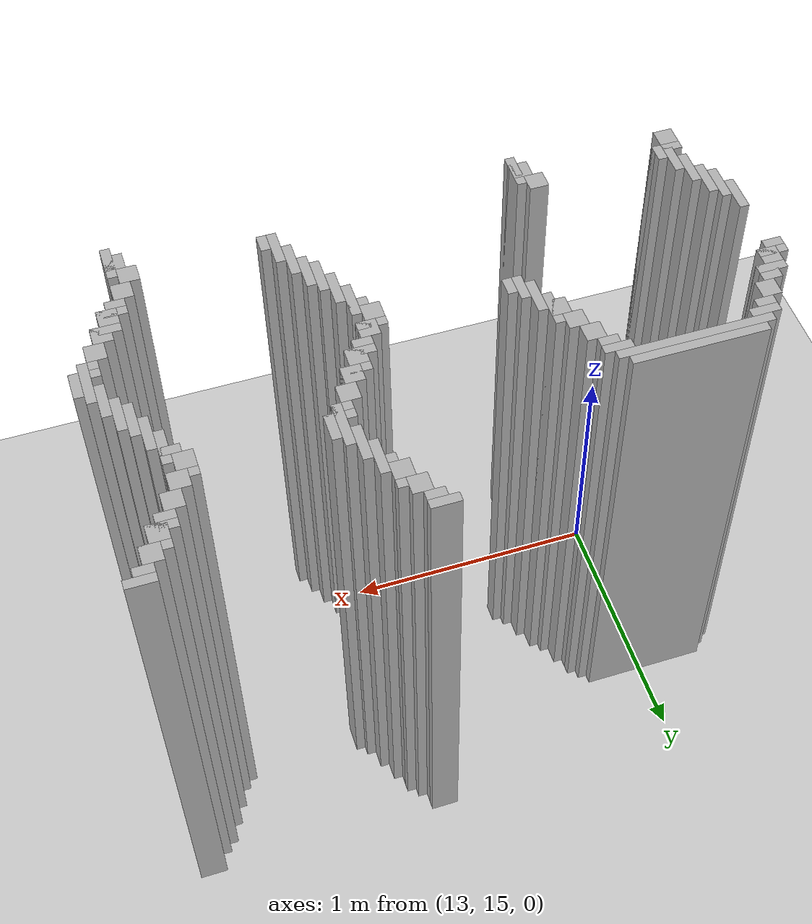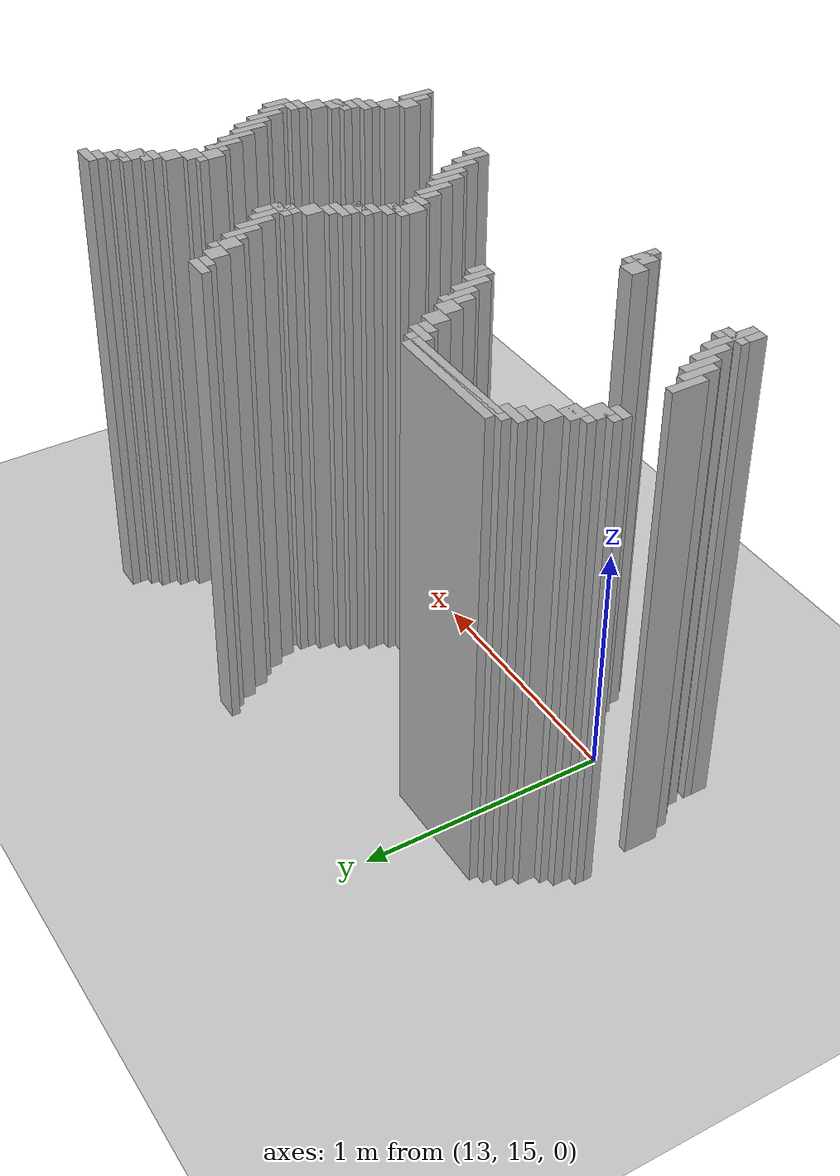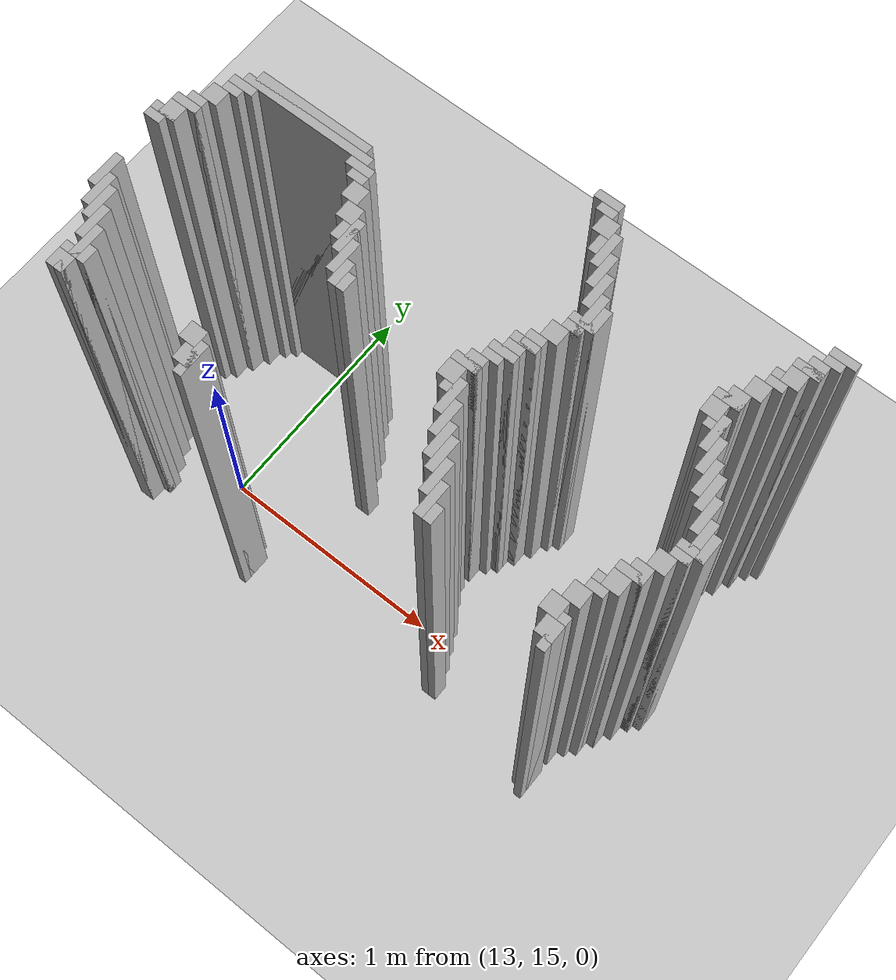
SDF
<sdf version="1.6">
 <world name="slam_world">
  <model name="ground_plane">
   <static>true</static>
   <link name="link">
    <collision name="collision">
     <geometry><plane><normal>0 0 1</normal><size>100 100</size></plane></geometry>
    </collision>
    <visual name="visual">
     <geometry><plane><normal>0 0 1</normal><size>100 100</size></plane></geometry>
     <material>
      <ambient>0.8 0.8 0.8 1</ambient>
      <diffuse>0.8 0.8 0.8 1</diffuse>
      <specular>0.8 0.8 0.8 1</specular>
     </material>
    </visual>
   </link>
  </model>
  <model name="wall_453">
   <static>true</static>
   <pose>13.973317865429234 16.061484918793504 1.0 0 0 0</pose>
   <link name="link">
    <collision name="collision">
     <geometry><box><size>0.10440835266821345 0.03480278422273782 2.0</size></box></geometry>
    </collision>
    <visual name="visual">
     <geometry><box><size>0.10440835266821345 0.03480278422273782 2.0</size></box></geometry>
     <material><ambient>0.5 0.5 0.5 1</ambient><diffuse>0.7 0.7 0.7 1</diffuse></material>
    </visual>
   </link>
  </model>
  <model name="wall_454">
   <static>true</static>
   <pose>14.912993039443155 16.061484918793504 1.0 0 0 0</pose>
   <link name="link">
    <collision name="collision">
     <geometry><box><size>0.10440835266821345 0.03480278422273782 2.0</size></box></geometry>
    </collision>
    <visual name="visual">
     <geometry><box><size>0.10440835266821345 0.03480278422273782 2.0</size></box></geometry>
     <material><ambient>0.5 0.5 0.5 1</ambient><diffuse>0.7 0.7 0.7 1</diffuse></material>
    </visual>
   </link>
  </model>
  <model name="wall_466">
   <static>true</static>
   <pose>13.990719257540603 16.026682134570766 1.0 0 0 0</pose>
   <link name="link">
    <collision name="collision">
     <geometry><box><size>0.06960556844547564 0.03480278422273782 2.0</size></box></geometry>
    </collision>
    <visual name="visual">
     <geometry><box><size>0.06960556844547564 0.03480278422273782 2.0</size></box></geometry>
     <material><ambient>0.5 0.5 0.5 1</ambient><diffuse>0.7 0.7 0.7 1</diffuse></material>
    </visual>
   </link>
  </model>
  <model name="wall_467">
   <static>true</static>
   <pose>14.895591647331786 16.026682134570766 1.0 0 0 0</pose>
   <link name="link">
    <collision name="collision">
     <geometry><box><size>0.06960556844547564 0.03480278422273782 2.0</size></box></geometry>
    </collision>
    <visual name="visual">
     <geometry><box><size>0.06960556844547564 0.03480278422273782 2.0</size></box></geometry>
     <material><ambient>0.5 0.5 0.5 1</ambient><diffuse>0.7 0.7 0.7 1</diffuse></material>
    </visual>
   </link>
  </model>
  <model name="wall_479">
   <static>true</static>
   <pose>14.02552204176334 15.974477958236658 1.0 0 0 0</pose>
   <link name="link">
    <collision name="collision">
     <geometry><box><size>0.06960556844547564 0.06960556844547564 2.0</size></box></geometry>
    </collision>
    <visual name="visual">
     <geometry><box><size>0.06960556844547564 0.06960556844547564 2.0</size></box></geometry>
     <material><ambient>0.5 0.5 0.5 1</ambient><diffuse>0.7 0.7 0.7 1</diffuse></material>
    </visual>
   </link>
  </model>
  <model name="wall_480">
   <static>true</static>
   <pose>14.860788863109049 15.974477958236658 1.0 0 0 0</pose>
   <link name="link">
    <collision name="collision">
     <geometry><box><size>0.06960556844547564 0.06960556844547564 2.0</size></box></geometry>
    </collision>
    <visual name="visual">
     <geometry><box><size>0.06960556844547564 0.06960556844547564 2.0</size></box></geometry>
     <material><ambient>0.5 0.5 0.5 1</ambient><diffuse>0.7 0.7 0.7 1</diffuse></material>
    </visual>
   </link>
  </model>
  <model name="wall_492">
   <static>true</static>
   <pose>14.077726218097448 15.904872389791183 1.0 0 0 0</pose>
   <link name="link">
    <collision name="collision">
     <geometry><box><size>0.03480278422273782 0.13921113689095127 2.0</size></box></geometry>
    </collision>
    <visual name="visual">
     <geometry><box><size>0.03480278422273782 0.13921113689095127 2.0</size></box></geometry>
     <material><ambient>0.5 0.5 0.5 1</ambient><diffuse>0.7 0.7 0.7 1</diffuse></material>
    </visual>
   </link>
  </model>
  <model name="wall_493">
   <static>true</static>
   <pose>14.84338747099768 15.95707656612529 1.0 0 0 0</pose>
   <link name="link">
    <collision name="collision">
     <geometry><box><size>0.10440835266821345 0.03480278422273782 2.0</size></box></geometry>
    </collision>
    <visual name="visual">
     <geometry><box><size>0.10440835266821345 0.03480278422273782 2.0</size></box></geometry>
     <material><ambient>0.5 0.5 0.5 1</ambient><diffuse>0.7 0.7 0.7 1</diffuse></material>
    </visual>
   </link>
  </model>
  <model name="wall_501">
   <static>true</static>
   <pose>14.06032482598608 15.904872389791183 1.0 0 0 0</pose>
   <link name="link">
    <collision name="collision">
     <geometry><box><size>0.06960556844547564 0.06960556844547564 2.0</size></box></geometry>
    </collision>
    <visual name="visual">
     <geometry><box><size>0.06960556844547564 0.06960556844547564 2.0</size></box></geometry>
     <material><ambient>0.5 0.5 0.5 1</ambient><diffuse>0.7 0.7 0.7 1</diffuse></material>
    </visual>
   </link>
  </model>
  <model name="wall_502">
   <static>true</static>
   <pose>14.825986078886311 15.904872389791183 1.0 0 0 0</pose>
   <link name="link">
    <collision name="collision">
     <geometry><box><size>0.06960556844547564 0.06960556844547564 2.0</size></box></geometry>
    </collision>
    <visual name="visual">
     <geometry><box><size>0.06960556844547564 0.06960556844547564 2.0</size></box></geometry>
     <material><ambient>0.5 0.5 0.5 1</ambient><diffuse>0.7 0.7 0.7 1</diffuse></material>
    </visual>
   </link>
  </model>
  <model name="wall_514">
   <static>true</static>
   <pose>14.112529002320185 15.835266821345707 1.0 0 0 0</pose>
   <link name="link">
    <collision name="collision">
     <geometry><box><size>0.03480278422273782 0.13921113689095127 2.0</size></box></geometry>
    </collision>
    <visual name="visual">
     <geometry><box><size>0.03480278422273782 0.13921113689095127 2.0</size></box></geometry>
     <material><ambient>0.5 0.5 0.5 1</ambient><diffuse>0.7 0.7 0.7 1</diffuse></material>
    </visual>
   </link>
  </model>
  <model name="wall_515">
   <static>true</static>
   <pose>14.80858468677494 15.887470997679813 1.0 0 0 0</pose>
   <link name="link">
    <collision name="collision">
     <geometry><box><size>0.10440835266821345 0.03480278422273782 2.0</size></box></geometry>
    </collision>
    <visual name="visual">
     <geometry><box><size>0.10440835266821345 0.03480278422273782 2.0</size></box></geometry>
     <material><ambient>0.5 0.5 0.5 1</ambient><diffuse>0.7 0.7 0.7 1</diffuse></material>
    </visual>
   </link>
  </model>
  <model name="wall_522">
   <static>true</static>
   <pose>14.791183294663572 15.852668213457076 1.0 0 0 0</pose>
   <link name="link">
    <collision name="collision">
     <geometry><box><size>0.06960556844547564 0.03480278422273782 2.0</size></box></geometry>
    </collision>
    <visual name="visual">
     <geometry><box><size>0.06960556844547564 0.03480278422273782 2.0</size></box></geometry>
     <material><ambient>0.5 0.5 0.5 1</ambient><diffuse>0.7 0.7 0.7 1</diffuse></material>
    </visual>
   </link>
  </model>
  <model name="wall_534">
   <static>true</static>
   <pose>14.147331786542923 15.765661252900232 1.0 0 0 0</pose>
   <link name="link">
    <collision name="collision">
     <geometry><box><size>0.03480278422273782 0.13921113689095127 2.0</size></box></geometry>
    </collision>
    <visual name="visual">
     <geometry><box><size>0.03480278422273782 0.13921113689095127 2.0</size></box></geometry>
     <material><ambient>0.5 0.5 0.5 1</ambient><diffuse>0.7 0.7 0.7 1</diffuse></material>
    </visual>
   </link>
  </model>
  <model name="wall_535">
   <static>true</static>
   <pose>14.756380510440835 15.80046403712297 1.0 0 0 0</pose>
   <link name="link">
    <collision name="collision">
     <geometry><box><size>0.06960556844547564 0.06960556844547564 2.0</size></box></geometry>
    </collision>
    <visual name="visual">
     <geometry><box><size>0.06960556844547564 0.06960556844547564 2.0</size></box></geometry>
     <material><ambient>0.5 0.5 0.5 1</ambient><diffuse>0.7 0.7 0.7 1</diffuse></material>
    </visual>
   </link>
  </model>
  <model name="wall_547">
   <static>true</static>
   <pose>14.18213457076566 15.678654292343387 1.0 0 0 0</pose>
   <link name="link">
    <collision name="collision">
     <geometry><box><size>0.03480278422273782 0.17401392111368907 2.0</size></box></geometry>
    </collision>
    <visual name="visual">
     <geometry><box><size>0.03480278422273782 0.17401392111368907 2.0</size></box></geometry>
     <material><ambient>0.5 0.5 0.5 1</ambient><diffuse>0.7 0.7 0.7 1</diffuse></material>
    </visual>
   </link>
  </model>
  <model name="wall_548">
   <static>true</static>
   <pose>14.721577726218097 15.730858468677493 1.0 0 0 0</pose>
   <link name="link">
    <collision name="collision">
     <geometry><box><size>0.06960556844547564 0.06960556844547564 2.0</size></box></geometry>
    </collision>
    <visual name="visual">
     <geometry><box><size>0.06960556844547564 0.06960556844547564 2.0</size></box></geometry>
     <material><ambient>0.5 0.5 0.5 1</ambient><diffuse>0.7 0.7 0.7 1</diffuse></material>
    </visual>
   </link>
  </model>
  <model name="wall_559">
   <static>true</static>
   <pose>12.981438515081207 15.696055684454755 1.0 0 0 0</pose>
   <link name="link">
    <collision name="collision">
     <geometry><box><size>0.4872389791183295 0.06960556844547564 2.0</size></box></geometry>
    </collision>
    <visual name="visual">
     <geometry><box><size>0.4872389791183295 0.06960556844547564 2.0</size></box></geometry>
     <material><ambient>0.5 0.5 0.5 1</ambient><diffuse>0.7 0.7 0.7 1</diffuse></material>
    </visual>
   </link>
  </model>
  <model name="wall_560">
   <static>true</static>
   <pose>14.2169373549884 15.678654292343387 1.0 0 0 0</pose>
   <link name="link">
    <collision name="collision">
     <geometry><box><size>0.03480278422273782 0.10440835266821345 2.0</size></box></geometry>
    </collision>
    <visual name="visual">
     <geometry><box><size>0.03480278422273782 0.10440835266821345 2.0</size></box></geometry>
     <material><ambient>0.5 0.5 0.5 1</ambient><diffuse>0.7 0.7 0.7 1</diffuse></material>
    </visual>
   </link>
  </model>
  <model name="wall_561">
   <static>true</static>
   <pose>14.704176334106728 15.713457076566124 1.0 0 0 0</pose>
   <link name="link">
    <collision name="collision">
     <geometry><box><size>0.10440835266821345 0.03480278422273782 2.0</size></box></geometry>
    </collision>
    <visual name="visual">
     <geometry><box><size>0.10440835266821345 0.03480278422273782 2.0</size></box></geometry>
     <material><ambient>0.5 0.5 0.5 1</ambient><diffuse>0.7 0.7 0.7 1</diffuse></material>
    </visual>
   </link>
  </model>
  <model name="wall_572">
   <static>true</static>
   <pose>12.981438515081207 15.678654292343387 1.0 0 0 0</pose>
   <link name="link">
    <collision name="collision">
     <geometry><box><size>0.5568445475638051 0.03480278422273782 2.0</size></box></geometry>
    </collision>
    <visual name="visual">
     <geometry><box><size>0.5568445475638051 0.03480278422273782 2.0</size></box></geometry>
     <material><ambient>0.5 0.5 0.5 1</ambient><diffuse>0.7 0.7 0.7 1</diffuse></material>
    </visual>
   </link>
  </model>
  <model name="wall_573">
   <static>true</static>
   <pose>14.68677494199536 15.661252900232018 1.0 0 0 0</pose>
   <link name="link">
    <collision name="collision">
     <geometry><box><size>0.06960556844547564 0.06960556844547564 2.0</size></box></geometry>
    </collision>
    <visual name="visual">
     <geometry><box><size>0.06960556844547564 0.06960556844547564 2.0</size></box></geometry>
     <material><ambient>0.5 0.5 0.5 1</ambient><diffuse>0.7 0.7 0.7 1</diffuse></material>
    </visual>
   </link>
  </model>
  <model name="wall_588">
   <static>true</static>
   <pose>12.720417633410673 15.64385150812065 1.0 0 0 0</pose>
   <link name="link">
    <collision name="collision">
     <geometry><box><size>0.10440835266821345 0.03480278422273782 2.0</size></box></geometry>
    </collision>
    <visual name="visual">
     <geometry><box><size>0.10440835266821345 0.03480278422273782 2.0</size></box></geometry>
     <material><ambient>0.5 0.5 0.5 1</ambient><diffuse>0.7 0.7 0.7 1</diffuse></material>
    </visual>
   </link>
  </model>
  <model name="wall_589">
   <static>true</static>
   <pose>13.24245939675174 15.64385150812065 1.0 0 0 0</pose>
   <link name="link">
    <collision name="collision">
     <geometry><box><size>0.10440835266821345 0.03480278422273782 2.0</size></box></geometry>
    </collision>
    <visual name="visual">
     <geometry><box><size>0.10440835266821345 0.03480278422273782 2.0</size></box></geometry>
     <material><ambient>0.5 0.5 0.5 1</ambient><diffuse>0.7 0.7 0.7 1</diffuse></material>
    </visual>
   </link>
  </model>
  <model name="wall_590">
   <static>true</static>
   <pose>14.18213457076566 15.64385150812065 1.0 0 0 0</pose>
   <link name="link">
    <collision name="collision">
     <geometry><box><size>0.10440835266821345 0.03480278422273782 2.0</size></box></geometry>
    </collision>
    <visual name="visual">
     <geometry><box><size>0.10440835266821345 0.03480278422273782 2.0</size></box></geometry>
     <material><ambient>0.5 0.5 0.5 1</ambient><diffuse>0.7 0.7 0.7 1</diffuse></material>
    </visual>
   </link>
  </model>
  <model name="wall_591">
   <static>true</static>
   <pose>14.738979118329466 15.591647331786543 1.0 0 0 0</pose>
   <link name="link">
    <collision name="collision">
     <geometry><box><size>0.03480278422273782 0.13921113689095127 2.0</size></box></geometry>
    </collision>
    <visual name="visual">
     <geometry><box><size>0.03480278422273782 0.13921113689095127 2.0</size></box></geometry>
     <material><ambient>0.5 0.5 0.5 1</ambient><diffuse>0.7 0.7 0.7 1</diffuse></material>
    </visual>
   </link>
  </model>
  <model name="wall_604">
   <static>true</static>
   <pose>12.703016241299304 15.609048723897912 1.0 0 0 0</pose>
   <link name="link">
    <collision name="collision">
     <geometry><box><size>0.06960556844547564 0.03480278422273782 2.0</size></box></geometry>
    </collision>
    <visual name="visual">
     <geometry><box><size>0.06960556844547564 0.03480278422273782 2.0</size></box></geometry>
     <material><ambient>0.5 0.5 0.5 1</ambient><diffuse>0.7 0.7 0.7 1</diffuse></material>
    </visual>
   </link>
  </model>
  <model name="wall_605">
   <static>true</static>
   <pose>13.259860788863108 15.609048723897912 1.0 0 0 0</pose>
   <link name="link">
    <collision name="collision">
     <geometry><box><size>0.06960556844547564 0.03480278422273782 2.0</size></box></geometry>
    </collision>
    <visual name="visual">
     <geometry><box><size>0.06960556844547564 0.03480278422273782 2.0</size></box></geometry>
     <material><ambient>0.5 0.5 0.5 1</ambient><diffuse>0.7 0.7 0.7 1</diffuse></material>
    </visual>
   </link>
  </model>
  <model name="wall_606">
   <static>true</static>
   <pose>14.164733178654291 15.609048723897912 1.0 0 0 0</pose>
   <link name="link">
    <collision name="collision">
     <geometry><box><size>0.06960556844547564 0.03480278422273782 2.0</size></box></geometry>
    </collision>
    <visual name="visual">
     <geometry><box><size>0.06960556844547564 0.03480278422273782 2.0</size></box></geometry>
     <material><ambient>0.5 0.5 0.5 1</ambient><diffuse>0.7 0.7 0.7 1</diffuse></material>
    </visual>
   </link>
  </model>
  <model name="wall_607">
   <static>true</static>
   <pose>14.721577726218097 15.609048723897912 1.0 0 0 0</pose>
   <link name="link">
    <collision name="collision">
     <geometry><box><size>0.06960556844547564 0.03480278422273782 2.0</size></box></geometry>
    </collision>
    <visual name="visual">
     <geometry><box><size>0.06960556844547564 0.03480278422273782 2.0</size></box></geometry>
     <material><ambient>0.5 0.5 0.5 1</ambient><diffuse>0.7 0.7 0.7 1</diffuse></material>
    </visual>
   </link>
  </model>
  <model name="wall_620">
   <static>true</static>
   <pose>12.668213457076565 15.556844547563804 1.0 0 0 0</pose>
   <link name="link">
    <collision name="collision">
     <geometry><box><size>0.06960556844547564 0.06960556844547564 2.0</size></box></geometry>
    </collision>
    <visual name="visual">
     <geometry><box><size>0.06960556844547564 0.06960556844547564 2.0</size></box></geometry>
     <material><ambient>0.5 0.5 0.5 1</ambient><diffuse>0.7 0.7 0.7 1</diffuse></material>
    </visual>
   </link>
  </model>
  <model name="wall_621">
   <static>true</static>
   <pose>13.294663573085847 15.556844547563804 1.0 0 0 0</pose>
   <link name="link">
    <collision name="collision">
     <geometry><box><size>0.06960556844547564 0.06960556844547564 2.0</size></box></geometry>
    </collision>
    <visual name="visual">
     <geometry><box><size>0.06960556844547564 0.06960556844547564 2.0</size></box></geometry>
     <material><ambient>0.5 0.5 0.5 1</ambient><diffuse>0.7 0.7 0.7 1</diffuse></material>
    </visual>
   </link>
  </model>
  <model name="wall_622">
   <static>true</static>
   <pose>14.129930394431554 15.556844547563804 1.0 0 0 0</pose>
   <link name="link">
    <collision name="collision">
     <geometry><box><size>0.06960556844547564 0.06960556844547564 2.0</size></box></geometry>
    </collision>
    <visual name="visual">
     <geometry><box><size>0.06960556844547564 0.06960556844547564 2.0</size></box></geometry>
     <material><ambient>0.5 0.5 0.5 1</ambient><diffuse>0.7 0.7 0.7 1</diffuse></material>
    </visual>
   </link>
  </model>
  <model name="wall_623">
   <static>true</static>
   <pose>14.773781902552203 15.522041763341067 1.0 0 0 0</pose>
   <link name="link">
    <collision name="collision">
     <geometry><box><size>0.03480278422273782 0.13921113689095127 2.0</size></box></geometry>
    </collision>
    <visual name="visual">
     <geometry><box><size>0.03480278422273782 0.13921113689095127 2.0</size></box></geometry>
     <material><ambient>0.5 0.5 0.5 1</ambient><diffuse>0.7 0.7 0.7 1</diffuse></material>
    </visual>
   </link>
  </model>
  <model name="wall_636">
   <static>true</static>
   <pose>12.633410672853827 15.48723897911833 1.0 0 0 0</pose>
   <link name="link">
    <collision name="collision">
     <geometry><box><size>0.06960556844547564 0.06960556844547564 2.0</size></box></geometry>
    </collision>
    <visual name="visual">
     <geometry><box><size>0.06960556844547564 0.06960556844547564 2.0</size></box></geometry>
     <material><ambient>0.5 0.5 0.5 1</ambient><diffuse>0.7 0.7 0.7 1</diffuse></material>
    </visual>
   </link>
  </model>
  <model name="wall_637">
   <static>true</static>
   <pose>13.329466357308585 15.48723897911833 1.0 0 0 0</pose>
   <link name="link">
    <collision name="collision">
     <geometry><box><size>0.06960556844547564 0.06960556844547564 2.0</size></box></geometry>
    </collision>
    <visual name="visual">
     <geometry><box><size>0.06960556844547564 0.06960556844547564 2.0</size></box></geometry>
     <material><ambient>0.5 0.5 0.5 1</ambient><diffuse>0.7 0.7 0.7 1</diffuse></material>
    </visual>
   </link>
  </model>
  <model name="wall_638">
   <static>true</static>
   <pose>14.095127610208817 15.48723897911833 1.0 0 0 0</pose>
   <link name="link">
    <collision name="collision">
     <geometry><box><size>0.06960556844547564 0.06960556844547564 2.0</size></box></geometry>
    </collision>
    <visual name="visual">
     <geometry><box><size>0.06960556844547564 0.06960556844547564 2.0</size></box></geometry>
     <material><ambient>0.5 0.5 0.5 1</ambient><diffuse>0.7 0.7 0.7 1</diffuse></material>
    </visual>
   </link>
  </model>
  <model name="wall_639">
   <static>true</static>
   <pose>14.80858468677494 15.452436194895592 1.0 0 0 0</pose>
   <link name="link">
    <collision name="collision">
     <geometry><box><size>0.03480278422273782 0.13921113689095127 2.0</size></box></geometry>
    </collision>
    <visual name="visual">
     <geometry><box><size>0.03480278422273782 0.13921113689095127 2.0</size></box></geometry>
     <material><ambient>0.5 0.5 0.5 1</ambient><diffuse>0.7 0.7 0.7 1</diffuse></material>
    </visual>
   </link>
  </model>
  <model name="wall_652">
   <static>true</static>
   <pose>12.616009280742459 15.46983758700696 1.0 0 0 0</pose>
   <link name="link">
    <collision name="collision">
     <geometry><box><size>0.10440835266821345 0.03480278422273782 2.0</size></box></geometry>
    </collision>
    <visual name="visual">
     <geometry><box><size>0.10440835266821345 0.03480278422273782 2.0</size></box></geometry>
     <material><ambient>0.5 0.5 0.5 1</ambient><diffuse>0.7 0.7 0.7 1</diffuse></material>
    </visual>
   </link>
  </model>
  <model name="wall_653">
   <static>true</static>
   <pose>13.38167053364269 15.417633410672853 1.0 0 0 0</pose>
   <link name="link">
    <collision name="collision">
     <geometry><box><size>0.03480278422273782 0.13921113689095127 2.0</size></box></geometry>
    </collision>
    <visual name="visual">
     <geometry><box><size>0.03480278422273782 0.13921113689095127 2.0</size></box></geometry>
     <material><ambient>0.5 0.5 0.5 1</ambient><diffuse>0.7 0.7 0.7 1</diffuse></material>
    </visual>
   </link>
  </model>
  <model name="wall_654">
   <static>true</static>
   <pose>14.077726218097448 15.46983758700696 1.0 0 0 0</pose>
   <link name="link">
    <collision name="collision">
     <geometry><box><size>0.10440835266821345 0.03480278422273782 2.0</size></box></geometry>
    </collision>
    <visual name="visual">
     <geometry><box><size>0.10440835266821345 0.03480278422273782 2.0</size></box></geometry>
     <material><ambient>0.5 0.5 0.5 1</ambient><diffuse>0.7 0.7 0.7 1</diffuse></material>
    </visual>
   </link>
  </model>
  <model name="wall_655">
   <static>true</static>
   <pose>14.84338747099768 15.417633410672853 1.0 0 0 0</pose>
   <link name="link">
    <collision name="collision">
     <geometry><box><size>0.03480278422273782 0.13921113689095127 2.0</size></box></geometry>
    </collision>
    <visual name="visual">
     <geometry><box><size>0.03480278422273782 0.13921113689095127 2.0</size></box></geometry>
     <material><ambient>0.5 0.5 0.5 1</ambient><diffuse>0.7 0.7 0.7 1</diffuse></material>
    </visual>
   </link>
  </model>
  <model name="wall_663">
   <static>true</static>
   <pose>12.59860788863109 15.417633410672853 1.0 0 0 0</pose>
   <link name="link">
    <collision name="collision">
     <geometry><box><size>0.06960556844547564 0.06960556844547564 2.0</size></box></geometry>
    </collision>
    <visual name="visual">
     <geometry><box><size>0.06960556844547564 0.06960556844547564 2.0</size></box></geometry>
     <material><ambient>0.5 0.5 0.5 1</ambient><diffuse>0.7 0.7 0.7 1</diffuse></material>
    </visual>
   </link>
  </model>
  <model name="wall_664">
   <static>true</static>
   <pose>13.364269141531322 15.417633410672853 1.0 0 0 0</pose>
   <link name="link">
    <collision name="collision">
     <geometry><box><size>0.06960556844547564 0.06960556844547564 2.0</size></box></geometry>
    </collision>
    <visual name="visual">
     <geometry><box><size>0.06960556844547564 0.06960556844547564 2.0</size></box></geometry>
     <material><ambient>0.5 0.5 0.5 1</ambient><diffuse>0.7 0.7 0.7 1</diffuse></material>
    </visual>
   </link>
  </model>
  <model name="wall_665">
   <static>true</static>
   <pose>14.06032482598608 15.417633410672853 1.0 0 0 0</pose>
   <link name="link">
    <collision name="collision">
     <geometry><box><size>0.06960556844547564 0.06960556844547564 2.0</size></box></geometry>
    </collision>
    <visual name="visual">
     <geometry><box><size>0.06960556844547564 0.06960556844547564 2.0</size></box></geometry>
     <material><ambient>0.5 0.5 0.5 1</ambient><diffuse>0.7 0.7 0.7 1</diffuse></material>
    </visual>
   </link>
  </model>
  <model name="wall_678">
   <static>true</static>
   <pose>12.581206496519721 15.400232018561484 1.0 0 0 0</pose>
   <link name="link">
    <collision name="collision">
     <geometry><box><size>0.10440835266821345 0.03480278422273782 2.0</size></box></geometry>
    </collision>
    <visual name="visual">
     <geometry><box><size>0.10440835266821345 0.03480278422273782 2.0</size></box></geometry>
     <material><ambient>0.5 0.5 0.5 1</ambient><diffuse>0.7 0.7 0.7 1</diffuse></material>
    </visual>
   </link>
  </model>
  <model name="wall_679">
   <static>true</static>
   <pose>13.416473317865428 15.348027842227378 1.0 0 0 0</pose>
   <link name="link">
    <collision name="collision">
     <geometry><box><size>0.03480278422273782 0.13921113689095127 2.0</size></box></geometry>
    </collision>
    <visual name="visual">
     <geometry><box><size>0.03480278422273782 0.13921113689095127 2.0</size></box></geometry>
     <material><ambient>0.5 0.5 0.5 1</ambient><diffuse>0.7 0.7 0.7 1</diffuse></material>
    </visual>
   </link>
  </model>
  <model name="wall_680">
   <static>true</static>
   <pose>14.042923433874709 15.400232018561484 1.0 0 0 0</pose>
   <link name="link">
    <collision name="collision">
     <geometry><box><size>0.10440835266821345 0.03480278422273782 2.0</size></box></geometry>
    </collision>
    <visual name="visual">
     <geometry><box><size>0.10440835266821345 0.03480278422273782 2.0</size></box></geometry>
     <material><ambient>0.5 0.5 0.5 1</ambient><diffuse>0.7 0.7 0.7 1</diffuse></material>
    </visual>
   </link>
  </model>
  <model name="wall_681">
   <static>true</static>
   <pose>14.878190255220417 15.348027842227378 1.0 0 0 0</pose>
   <link name="link">
    <collision name="collision">
     <geometry><box><size>0.03480278422273782 0.13921113689095127 2.0</size></box></geometry>
    </collision>
    <visual name="visual">
     <geometry><box><size>0.03480278422273782 0.13921113689095127 2.0</size></box></geometry>
     <material><ambient>0.5 0.5 0.5 1</ambient><diffuse>0.7 0.7 0.7 1</diffuse></material>
    </visual>
   </link>
  </model>
  <model name="wall_686">
   <static>true</static>
   <pose>12.563805104408353 15.365429234338746 1.0 0 0 0</pose>
   <link name="link">
    <collision name="collision">
     <geometry><box><size>0.06960556844547564 0.03480278422273782 2.0</size></box></geometry>
    </collision>
    <visual name="visual">
     <geometry><box><size>0.06960556844547564 0.03480278422273782 2.0</size></box></geometry>
     <material><ambient>0.5 0.5 0.5 1</ambient><diffuse>0.7 0.7 0.7 1</diffuse></material>
    </visual>
   </link>
  </model>
  <model name="wall_687">
   <static>true</static>
   <pose>14.02552204176334 15.365429234338746 1.0 0 0 0</pose>
   <link name="link">
    <collision name="collision">
     <geometry><box><size>0.06960556844547564 0.03480278422273782 2.0</size></box></geometry>
    </collision>
    <visual name="visual">
     <geometry><box><size>0.06960556844547564 0.03480278422273782 2.0</size></box></geometry>
     <material><ambient>0.5 0.5 0.5 1</ambient><diffuse>0.7 0.7 0.7 1</diffuse></material>
    </visual>
   </link>
  </model>
  <model name="wall_701">
   <static>true</static>
   <pose>13.451276102088167 15.295823665893272 1.0 0 0 0</pose>
   <link name="link">
    <collision name="collision">
     <geometry><box><size>0.03480278422273782 0.10440835266821345 2.0</size></box></geometry>
    </collision>
    <visual name="visual">
     <geometry><box><size>0.03480278422273782 0.10440835266821345 2.0</size></box></geometry>
     <material><ambient>0.5 0.5 0.5 1</ambient><diffuse>0.7 0.7 0.7 1</diffuse></material>
    </visual>
   </link>
  </model>
  <model name="wall_702">
   <static>true</static>
   <pose>13.990719257540603 15.31322505800464 1.0 0 0 0</pose>
   <link name="link">
    <collision name="collision">
     <geometry><box><size>0.06960556844547564 0.06960556844547564 2.0</size></box></geometry>
    </collision>
    <visual name="visual">
     <geometry><box><size>0.06960556844547564 0.06960556844547564 2.0</size></box></geometry>
     <material><ambient>0.5 0.5 0.5 1</ambient><diffuse>0.7 0.7 0.7 1</diffuse></material>
    </visual>
   </link>
  </model>
  <model name="wall_703">
   <static>true</static>
   <pose>14.912993039443155 15.261020881670532 1.0 0 0 0</pose>
   <link name="link">
    <collision name="collision">
     <geometry><box><size>0.03480278422273782 0.17401392111368907 2.0</size></box></geometry>
    </collision>
    <visual name="visual">
     <geometry><box><size>0.03480278422273782 0.17401392111368907 2.0</size></box></geometry>
     <material><ambient>0.5 0.5 0.5 1</ambient><diffuse>0.7 0.7 0.7 1</diffuse></material>
    </visual>
   </link>
  </model>
  <model name="wall_717">
   <static>true</static>
   <pose>13.486078886310905 15.278422273781901 1.0 0 0 0</pose>
   <link name="link">
    <collision name="collision">
     <geometry><box><size>0.03480278422273782 0.06960556844547564 2.0</size></box></geometry>
    </collision>
    <visual name="visual">
     <geometry><box><size>0.03480278422273782 0.06960556844547564 2.0</size></box></geometry>
     <material><ambient>0.5 0.5 0.5 1</ambient><diffuse>0.7 0.7 0.7 1</diffuse></material>
    </visual>
   </link>
  </model>
  <model name="wall_718">
   <static>true</static>
   <pose>13.973317865429234 15.295823665893272 1.0 0 0 0</pose>
   <link name="link">
    <collision name="collision">
     <geometry><box><size>0.10440835266821345 0.03480278422273782 2.0</size></box></geometry>
    </collision>
    <visual name="visual">
     <geometry><box><size>0.10440835266821345 0.03480278422273782 2.0</size></box></geometry>
     <material><ambient>0.5 0.5 0.5 1</ambient><diffuse>0.7 0.7 0.7 1</diffuse></material>
    </visual>
   </link>
  </model>
  <model name="wall_719">
   <static>true</static>
   <pose>14.947795823665892 15.261020881670532 1.0 0 0 0</pose>
   <link name="link">
    <collision name="collision">
     <geometry><box><size>0.03480278422273782 0.10440835266821345 2.0</size></box></geometry>
    </collision>
    <visual name="visual">
     <geometry><box><size>0.03480278422273782 0.10440835266821345 2.0</size></box></geometry>
     <material><ambient>0.5 0.5 0.5 1</ambient><diffuse>0.7 0.7 0.7 1</diffuse></material>
    </visual>
   </link>
  </model>
  <model name="wall_729">
   <static>true</static>
   <pose>13.955916473317865 15.243619489559164 1.0 0 0 0</pose>
   <link name="link">
    <collision name="collision">
     <geometry><box><size>0.06960556844547564 0.06960556844547564 2.0</size></box></geometry>
    </collision>
    <visual name="visual">
     <geometry><box><size>0.06960556844547564 0.06960556844547564 2.0</size></box></geometry>
     <material><ambient>0.5 0.5 0.5 1</ambient><diffuse>0.7 0.7 0.7 1</diffuse></material>
    </visual>
   </link>
  </model>
  <model name="wall_744">
   <static>true</static>
   <pose>14.008120649651971 15.174013921113689 1.0 0 0 0</pose>
   <link name="link">
    <collision name="collision">
     <geometry><box><size>0.03480278422273782 0.13921113689095127 2.0</size></box></geometry>
    </collision>
    <visual name="visual">
     <geometry><box><size>0.03480278422273782 0.13921113689095127 2.0</size></box></geometry>
     <material><ambient>0.5 0.5 0.5 1</ambient><diffuse>0.7 0.7 0.7 1</diffuse></material>
    </visual>
   </link>
  </model>
  <model name="wall_745">
   <static>true</static>
   <pose>14.912993039443155 15.226218097447795 1.0 0 0 0</pose>
   <link name="link">
    <collision name="collision">
     <geometry><box><size>0.10440835266821345 0.03480278422273782 2.0</size></box></geometry>
    </collision>
    <visual name="visual">
     <geometry><box><size>0.10440835266821345 0.03480278422273782 2.0</size></box></geometry>
     <material><ambient>0.5 0.5 0.5 1</ambient><diffuse>0.7 0.7 0.7 1</diffuse></material>
    </visual>
   </link>
  </model>
  <model name="wall_761">
   <static>true</static>
   <pose>13.990719257540603 15.191415313225058 1.0 0 0 0</pose>
   <link name="link">
    <collision name="collision">
     <geometry><box><size>0.06960556844547564 0.03480278422273782 2.0</size></box></geometry>
    </collision>
    <visual name="visual">
     <geometry><box><size>0.06960556844547564 0.03480278422273782 2.0</size></box></geometry>
     <material><ambient>0.5 0.5 0.5 1</ambient><diffuse>0.7 0.7 0.7 1</diffuse></material>
    </visual>
   </link>
  </model>
  <model name="wall_762">
   <static>true</static>
   <pose>14.895591647331786 15.191415313225058 1.0 0 0 0</pose>
   <link name="link">
    <collision name="collision">
     <geometry><box><size>0.06960556844547564 0.03480278422273782 2.0</size></box></geometry>
    </collision>
    <visual name="visual">
     <geometry><box><size>0.06960556844547564 0.03480278422273782 2.0</size></box></geometry>
     <material><ambient>0.5 0.5 0.5 1</ambient><diffuse>0.7 0.7 0.7 1</diffuse></material>
    </visual>
   </link>
  </model>
  <model name="wall_777">
   <static>true</static>
   <pose>12.581206496519721 15.104408352668212 1.0 0 0 0</pose>
   <link name="link">
    <collision name="collision">
     <geometry><box><size>0.03480278422273782 0.13921113689095127 2.0</size></box></geometry>
    </collision>
    <visual name="visual">
     <geometry><box><size>0.03480278422273782 0.13921113689095127 2.0</size></box></geometry>
     <material><ambient>0.5 0.5 0.5 1</ambient><diffuse>0.7 0.7 0.7 1</diffuse></material>
    </visual>
   </link>
  </model>
  <model name="wall_778">
   <static>true</static>
   <pose>14.042923433874709 15.104408352668212 1.0 0 0 0</pose>
   <link name="link">
    <collision name="collision">
     <geometry><box><size>0.03480278422273782 0.13921113689095127 2.0</size></box></geometry>
    </collision>
    <visual name="visual">
     <geometry><box><size>0.03480278422273782 0.13921113689095127 2.0</size></box></geometry>
     <material><ambient>0.5 0.5 0.5 1</ambient><diffuse>0.7 0.7 0.7 1</diffuse></material>
    </visual>
   </link>
  </model>
  <model name="wall_779">
   <static>true</static>
   <pose>14.860788863109049 15.139211136890951 1.0 0 0 0</pose>
   <link name="link">
    <collision name="collision">
     <geometry><box><size>0.06960556844547564 0.06960556844547564 2.0</size></box></geometry>
    </collision>
    <visual name="visual">
     <geometry><box><size>0.06960556844547564 0.06960556844547564 2.0</size></box></geometry>
     <material><ambient>0.5 0.5 0.5 1</ambient><diffuse>0.7 0.7 0.7 1</diffuse></material>
    </visual>
   </link>
  </model>
  <model name="wall_794">
   <static>true</static>
   <pose>12.616009280742459 15.034802784222737 1.0 0 0 0</pose>
   <link name="link">
    <collision name="collision">
     <geometry><box><size>0.03480278422273782 0.13921113689095127 2.0</size></box></geometry>
    </collision>
    <visual name="visual">
     <geometry><box><size>0.03480278422273782 0.13921113689095127 2.0</size></box></geometry>
     <material><ambient>0.5 0.5 0.5 1</ambient><diffuse>0.7 0.7 0.7 1</diffuse></material>
    </visual>
   </link>
  </model>
  <model name="wall_795">
   <static>true</static>
   <pose>14.077726218097448 15.034802784222737 1.0 0 0 0</pose>
   <link name="link">
    <collision name="collision">
     <geometry><box><size>0.03480278422273782 0.13921113689095127 2.0</size></box></geometry>
    </collision>
    <visual name="visual">
     <geometry><box><size>0.03480278422273782 0.13921113689095127 2.0</size></box></geometry>
     <material><ambient>0.5 0.5 0.5 1</ambient><diffuse>0.7 0.7 0.7 1</diffuse></material>
    </visual>
   </link>
  </model>
  <model name="wall_796">
   <static>true</static>
   <pose>14.825986078886311 15.069605568445475 1.0 0 0 0</pose>
   <link name="link">
    <collision name="collision">
     <geometry><box><size>0.06960556844547564 0.06960556844547564 2.0</size></box></geometry>
    </collision>
    <visual name="visual">
     <geometry><box><size>0.06960556844547564 0.06960556844547564 2.0</size></box></geometry>
     <material><ambient>0.5 0.5 0.5 1</ambient><diffuse>0.7 0.7 0.7 1</diffuse></material>
    </visual>
   </link>
  </model>
  <model name="wall_811">
   <static>true</static>
   <pose>12.650812064965196 15.0 1.0 0 0 0</pose>
   <link name="link">
    <collision name="collision">
     <geometry><box><size>0.03480278422273782 0.13921113689095127 2.0</size></box></geometry>
    </collision>
    <visual name="visual">
     <geometry><box><size>0.03480278422273782 0.13921113689095127 2.0</size></box></geometry>
     <material><ambient>0.5 0.5 0.5 1</ambient><diffuse>0.7 0.7 0.7 1</diffuse></material>
    </visual>
   </link>
  </model>
  <model name="wall_812">
   <static>true</static>
   <pose>14.112529002320185 15.0 1.0 0 0 0</pose>
   <link name="link">
    <collision name="collision">
     <geometry><box><size>0.03480278422273782 0.13921113689095127 2.0</size></box></geometry>
    </collision>
    <visual name="visual">
     <geometry><box><size>0.03480278422273782 0.13921113689095127 2.0</size></box></geometry>
     <material><ambient>0.5 0.5 0.5 1</ambient><diffuse>0.7 0.7 0.7 1</diffuse></material>
    </visual>
   </link>
  </model>
  <model name="wall_813">
   <static>true</static>
   <pose>14.80858468677494 15.052204176334106 1.0 0 0 0</pose>
   <link name="link">
    <collision name="collision">
     <geometry><box><size>0.10440835266821345 0.03480278422273782 2.0</size></box></geometry>
    </collision>
    <visual name="visual">
     <geometry><box><size>0.10440835266821345 0.03480278422273782 2.0</size></box></geometry>
     <material><ambient>0.5 0.5 0.5 1</ambient><diffuse>0.7 0.7 0.7 1</diffuse></material>
    </visual>
   </link>
  </model>
  <model name="wall_823">
   <static>true</static>
   <pose>14.791183294663572 15.0 1.0 0 0 0</pose>
   <link name="link">
    <collision name="collision">
     <geometry><box><size>0.06960556844547564 0.06960556844547564 2.0</size></box></geometry>
    </collision>
    <visual name="visual">
     <geometry><box><size>0.06960556844547564 0.06960556844547564 2.0</size></box></geometry>
     <material><ambient>0.5 0.5 0.5 1</ambient><diffuse>0.7 0.7 0.7 1</diffuse></material>
    </visual>
   </link>
  </model>
  <model name="wall_838">
   <static>true</static>
   <pose>12.685614849187935 14.930394431554523 1.0 0 0 0</pose>
   <link name="link">
    <collision name="collision">
     <geometry><box><size>0.03480278422273782 0.13921113689095127 2.0</size></box></geometry>
    </collision>
    <visual name="visual">
     <geometry><box><size>0.03480278422273782 0.13921113689095127 2.0</size></box></geometry>
     <material><ambient>0.5 0.5 0.5 1</ambient><diffuse>0.7 0.7 0.7 1</diffuse></material>
    </visual>
   </link>
  </model>
  <model name="wall_839">
   <static>true</static>
   <pose>14.147331786542923 14.930394431554523 1.0 0 0 0</pose>
   <link name="link">
    <collision name="collision">
     <geometry><box><size>0.03480278422273782 0.13921113689095127 2.0</size></box></geometry>
    </collision>
    <visual name="visual">
     <geometry><box><size>0.03480278422273782 0.13921113689095127 2.0</size></box></geometry>
     <material><ambient>0.5 0.5 0.5 1</ambient><diffuse>0.7 0.7 0.7 1</diffuse></material>
    </visual>
   </link>
  </model>
  <model name="wall_840">
   <static>true</static>
   <pose>14.773781902552203 14.982598607888631 1.0 0 0 0</pose>
   <link name="link">
    <collision name="collision">
     <geometry><box><size>0.10440835266821345 0.03480278422273782 2.0</size></box></geometry>
    </collision>
    <visual name="visual">
     <geometry><box><size>0.10440835266821345 0.03480278422273782 2.0</size></box></geometry>
     <material><ambient>0.5 0.5 0.5 1</ambient><diffuse>0.7 0.7 0.7 1</diffuse></material>
    </visual>
   </link>
  </model>
  <model name="wall_849">
   <static>true</static>
   <pose>14.756380510440835 14.947795823665892 1.0 0 0 0</pose>
   <link name="link">
    <collision name="collision">
     <geometry><box><size>0.06960556844547564 0.03480278422273782 2.0</size></box></geometry>
    </collision>
    <visual name="visual">
     <geometry><box><size>0.06960556844547564 0.03480278422273782 2.0</size></box></geometry>
     <material><ambient>0.5 0.5 0.5 1</ambient><diffuse>0.7 0.7 0.7 1</diffuse></material>
    </visual>
   </link>
  </model>
  <model name="wall_864">
   <static>true</static>
   <pose>12.720417633410673 14.825986078886311 1.0 0 0 0</pose>
   <link name="link">
    <collision name="collision">
     <geometry><box><size>0.03480278422273782 0.2088167053364269 2.0</size></box></geometry>
    </collision>
    <visual name="visual">
     <geometry><box><size>0.03480278422273782 0.2088167053364269 2.0</size></box></geometry>
     <material><ambient>0.5 0.5 0.5 1</ambient><diffuse>0.7 0.7 0.7 1</diffuse></material>
    </visual>
   </link>
  </model>
  <model name="wall_865">
   <static>true</static>
   <pose>14.18213457076566 14.860788863109049 1.0 0 0 0</pose>
   <link name="link">
    <collision name="collision">
     <geometry><box><size>0.03480278422273782 0.13921113689095127 2.0</size></box></geometry>
    </collision>
    <visual name="visual">
     <geometry><box><size>0.03480278422273782 0.13921113689095127 2.0</size></box></geometry>
     <material><ambient>0.5 0.5 0.5 1</ambient><diffuse>0.7 0.7 0.7 1</diffuse></material>
    </visual>
   </link>
  </model>
  <model name="wall_866">
   <static>true</static>
   <pose>14.721577726218097 14.895591647331786 1.0 0 0 0</pose>
   <link name="link">
    <collision name="collision">
     <geometry><box><size>0.06960556844547564 0.06960556844547564 2.0</size></box></geometry>
    </collision>
    <visual name="visual">
     <geometry><box><size>0.06960556844547564 0.06960556844547564 2.0</size></box></geometry>
     <material><ambient>0.5 0.5 0.5 1</ambient><diffuse>0.7 0.7 0.7 1</diffuse></material>
    </visual>
   </link>
  </model>
  <model name="wall_886">
   <static>true</static>
   <pose>12.75522041763341 14.825986078886311 1.0 0 0 0</pose>
   <link name="link">
    <collision name="collision">
     <geometry><box><size>0.03480278422273782 0.06960556844547564 2.0</size></box></geometry>
    </collision>
    <visual name="visual">
     <geometry><box><size>0.03480278422273782 0.06960556844547564 2.0</size></box></geometry>
     <material><ambient>0.5 0.5 0.5 1</ambient><diffuse>0.7 0.7 0.7 1</diffuse></material>
    </visual>
   </link>
  </model>
  <model name="wall_887">
   <static>true</static>
   <pose>13.22505800464037 14.825986078886311 1.0 0 0 0</pose>
   <link name="link">
    <collision name="collision">
     <geometry><box><size>0.06960556844547564 0.06960556844547564 2.0</size></box></geometry>
    </collision>
    <visual name="visual">
     <geometry><box><size>0.06960556844547564 0.06960556844547564 2.0</size></box></geometry>
     <material><ambient>0.5 0.5 0.5 1</ambient><diffuse>0.7 0.7 0.7 1</diffuse></material>
    </visual>
   </link>
  </model>
  <model name="wall_888">
   <static>true</static>
   <pose>14.2169373549884 14.825986078886311 1.0 0 0 0</pose>
   <link name="link">
    <collision name="collision">
     <geometry><box><size>0.03480278422273782 0.06960556844547564 2.0</size></box></geometry>
    </collision>
    <visual name="visual">
     <geometry><box><size>0.03480278422273782 0.06960556844547564 2.0</size></box></geometry>
     <material><ambient>0.5 0.5 0.5 1</ambient><diffuse>0.7 0.7 0.7 1</diffuse></material>
    </visual>
   </link>
  </model>
  <model name="wall_889">
   <static>true</static>
   <pose>14.68677494199536 14.825986078886311 1.0 0 0 0</pose>
   <link name="link">
    <collision name="collision">
     <geometry><box><size>0.06960556844547564 0.06960556844547564 2.0</size></box></geometry>
    </collision>
    <visual name="visual">
     <geometry><box><size>0.06960556844547564 0.06960556844547564 2.0</size></box></geometry>
     <material><ambient>0.5 0.5 0.5 1</ambient><diffuse>0.7 0.7 0.7 1</diffuse></material>
    </visual>
   </link>
  </model>
  <model name="wall_900">
   <static>true</static>
   <pose>12.720417633410673 14.80858468677494 1.0 0 0 0</pose>
   <link name="link">
    <collision name="collision">
     <geometry><box><size>0.10440835266821345 0.03480278422273782 2.0</size></box></geometry>
    </collision>
    <visual name="visual">
     <geometry><box><size>0.10440835266821345 0.03480278422273782 2.0</size></box></geometry>
     <material><ambient>0.5 0.5 0.5 1</ambient><diffuse>0.7 0.7 0.7 1</diffuse></material>
    </visual>
   </link>
  </model>
  <model name="wall_901">
   <static>true</static>
   <pose>13.277262180974477 14.756380510440835 1.0 0 0 0</pose>
   <link name="link">
    <collision name="collision">
     <geometry><box><size>0.03480278422273782 0.13921113689095127 2.0</size></box></geometry>
    </collision>
    <visual name="visual">
     <geometry><box><size>0.03480278422273782 0.13921113689095127 2.0</size></box></geometry>
     <material><ambient>0.5 0.5 0.5 1</ambient><diffuse>0.7 0.7 0.7 1</diffuse></material>
    </visual>
   </link>
  </model>
  <model name="wall_902">
   <static>true</static>
   <pose>14.738979118329466 14.756380510440835 1.0 0 0 0</pose>
   <link name="link">
    <collision name="collision">
     <geometry><box><size>0.03480278422273782 0.13921113689095127 2.0</size></box></geometry>
    </collision>
    <visual name="visual">
     <geometry><box><size>0.03480278422273782 0.13921113689095127 2.0</size></box></geometry>
     <material><ambient>0.5 0.5 0.5 1</ambient><diffuse>0.7 0.7 0.7 1</diffuse></material>
    </visual>
   </link>
  </model>
  <model name="wall_915">
   <static>true</static>
   <pose>12.703016241299304 14.756380510440835 1.0 0 0 0</pose>
   <link name="link">
    <collision name="collision">
     <geometry><box><size>0.06960556844547564 0.06960556844547564 2.0</size></box></geometry>
    </collision>
    <visual name="visual">
     <geometry><box><size>0.06960556844547564 0.06960556844547564 2.0</size></box></geometry>
     <material><ambient>0.5 0.5 0.5 1</ambient><diffuse>0.7 0.7 0.7 1</diffuse></material>
    </visual>
   </link>
  </model>
  <model name="wall_916">
   <static>true</static>
   <pose>13.259860788863108 14.756380510440835 1.0 0 0 0</pose>
   <link name="link">
    <collision name="collision">
     <geometry><box><size>0.06960556844547564 0.06960556844547564 2.0</size></box></geometry>
    </collision>
    <visual name="visual">
     <geometry><box><size>0.06960556844547564 0.06960556844547564 2.0</size></box></geometry>
     <material><ambient>0.5 0.5 0.5 1</ambient><diffuse>0.7 0.7 0.7 1</diffuse></material>
    </visual>
   </link>
  </model>
  <model name="wall_917">
   <static>true</static>
   <pose>14.721577726218097 14.756380510440835 1.0 0 0 0</pose>
   <link name="link">
    <collision name="collision">
     <geometry><box><size>0.06960556844547564 0.06960556844547564 2.0</size></box></geometry>
    </collision>
    <visual name="visual">
     <geometry><box><size>0.06960556844547564 0.06960556844547564 2.0</size></box></geometry>
     <material><ambient>0.5 0.5 0.5 1</ambient><diffuse>0.7 0.7 0.7 1</diffuse></material>
    </visual>
   </link>
  </model>
 </world>
</sdf>
